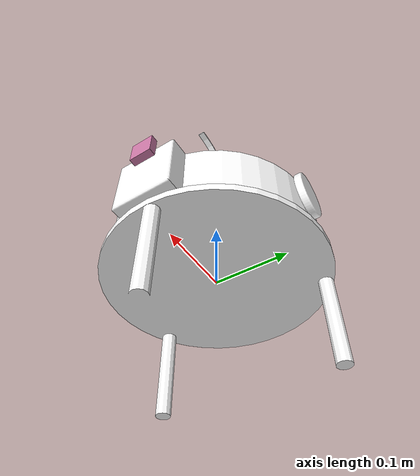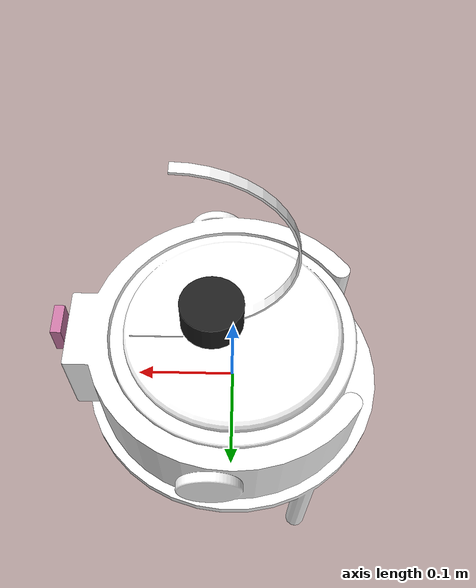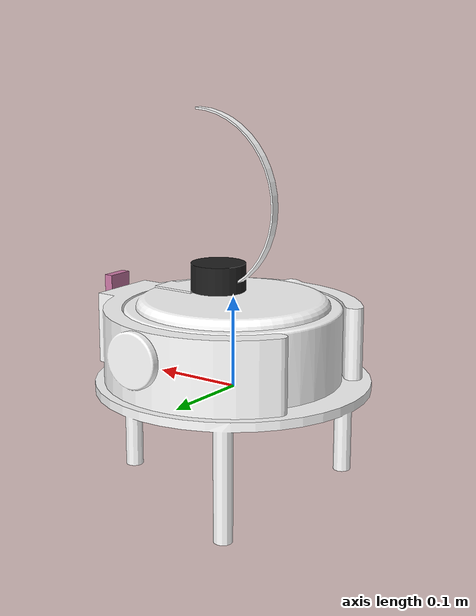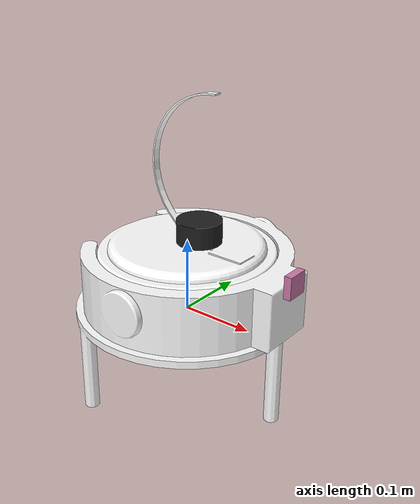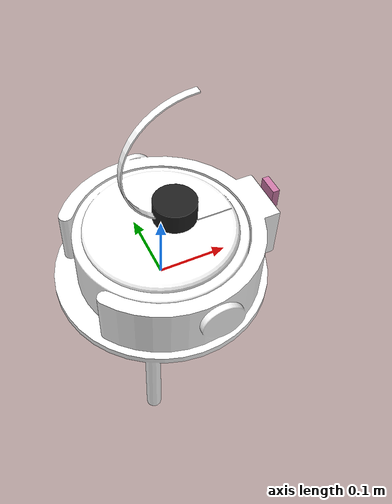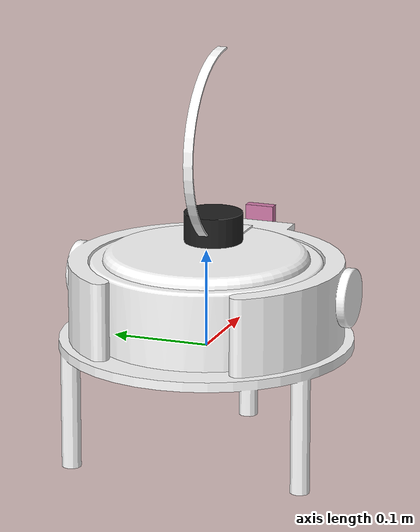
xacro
<?xml version="1.0" encoding="utf-8"?>

<robot
  name="kilobots2_urdf">
  <link
    name="base_link">
    <inertial>
      <origin
        xyz="-1.33781874467331E-14 -3.82853471148081E-15 -0.00396551724138915"
        rpy="0 0 0" />
      <mass
        value="0.81995568258708" />
      <inertia
        ixx="0.00564079460799193"
        ixy="-1.84653182501403E-16"
        ixz="-5.58393216252565E-16"
        iyy="0.00564079460799049"
        iyz="-1.60376033938652E-16"
        izz="0.0101745190475514" />
    </inertial>
    <visual>
      <origin
        xyz="0 0 0"
        rpy="0 0 0" />
      <geometry>
        <mesh
          filename="package://kilobots2_urdf/meshes/base_link.STL" />
      </geometry>
      <material
        name="">
        <color
          rgba="1 1 1 1" />
      </material>
    </visual>
  </link>
  <link
    name="Link1">
    <inertial>
      <origin
        xyz="2.41890735167699E-08 -0.0389268039298344 0.0404375467129113"
        rpy="0 0 0" />
      <mass
        value="0.0127783290000748" />
      <inertia
        ixx="0.0094809701689496"
        ixy="2.48280630189613E-09"
        ixz="-2.71701235830011E-11"
        iyy="0.011500728773523"
        iyz="7.52883944353464E-11"
        izz="0.0196540328337338" />
    </inertial>
    <visual>
      <origin
        xyz="0 0 0"
        rpy="0 0 0" />
      <geometry>
        <mesh
          filename="package://kilobots2_urdf/meshes/Link1.STL" />
      </geometry>
      <material
        name="">
        <color
          rgba="1 1 1 1" />
      </material>
    </visual>
    <collision>
      <origin
        xyz="0 0 0"
        rpy="0 0 0" />
      <geometry>
        <mesh
          filename="package://kilobots2_urdf/meshes/Link1.STL" />
      </geometry>
    </collision>
  </link>
  <joint
    name="Joint1"
    type="fixed">
    <origin
      xyz="0 0 0.01"
      rpy="0 0 1.5707963267949" />
    <parent
      link="base_link" />
    <child
      link="Link1" />
    <axis
      xyz="0 0 0" />
  </joint>
  <link
    name="Link2">
    <inertial>
      <origin
        xyz="-1.73472347597681E-18 -2.91579343624226E-05 0.0441550968095283"
        rpy="0 0 0" />
      <mass
        value="0.0383978314428565" />
      <inertia
        ixx="0.0156048213930555"
        ixy="5.81973948055211E-21"
        ixz="6.18076262284864E-21"
        iyy="0.01558301455067"
        iyz="-1.76377147802608E-05"
        izz="0.02612898447122" />
    </inertial>
    <visual>
      <origin
        xyz="0 0 0"
        rpy="0 0 0" />
      <geometry>
        <mesh
          filename="package://kilobots2_urdf/meshes/Link2.STL" />
      </geometry>
      <material
        name="">
        <color
          rgba="1 1 1 1" />
      </material>
    </visual>
    <collision>
      <origin
        xyz="0 0 0"
        rpy="0 0 0" />
      <geometry>
        <mesh
          filename="package://kilobots2_urdf/meshes/Link2.STL" />
      </geometry>
    </collision>
  </link>
  <joint
    name="Joint2"
    type="fixed">
    <origin
      xyz="0 0 0.01"
      rpy="0 0 1.5707963267949" />
    <parent
      link="base_link" />
    <child
      link="Link2" />
    <axis
      xyz="0 0 0" />
  </joint>
  <link
    name="Link3">
    <inertial>
      <origin
        xyz="-3.46944695195361E-18 5.55111512312578E-17 0.0209368228081408"
        rpy="0 0 0" />
      <mass
        value="0.0459623889803847" />
      <inertia
        ixx="0.000567804576580147"
        ixy="-9.53360892800729E-20"
        ixz="3.32840690823332E-19"
        iyy="0.00287373377271726"
        iyz="1.02152491374102E-19"
        izz="0.00248016039062731" />
    </inertial>
    <collision>
      <origin
        xyz="0 0 0"
        rpy="0 0 0" />
      <geometry>
        <mesh
          filename="package://kilobots2_urdf/meshes/Link3.STL" />
      </geometry>
    </collision>
  </link>
  <joint
    name="Joint3"
    type="fixed">
    <origin
      xyz="0.015 0 -0.02"
      rpy="-3.1416 0 1.5708" />
    <parent
      link="base_link" />
    <child
      link="Link3" />
    <axis
      xyz="0 0 0" />
  </joint>
  <link
    name="Link4">
    <inertial>
      <origin
        xyz="0 4.16333634234434E-17 -0.045"
        rpy="0 0 0" />
      <mass
        value="0.0339787797791946" />
      <inertia
        ixx="0.000194953665268063"
        ixy="4.35970711724902E-21"
        ixz="3.87253942747808E-21"
        iyy="0.000194953665268063"
        iyz="1.26815630932506E-20"
        izz="0.000343105616742529" />
    </inertial>
    <collision>
      <origin
        xyz="0 0 0"
        rpy="0 0 0" />
      <geometry>
        <mesh
          filename="package://kilobots2_urdf/meshes/Link4.STL" />
      </geometry>
    </collision>
  </link>
  <joint
    name="Joint4"
    type="continuous">
    <origin
      xyz="-0.045 0 0.055"
      rpy="1.5707963267949 0 -1.5707963267949" />
    <parent
      link="Link3" />
    <child
      link="Link4" />
    <axis
      xyz="0 0 -1" />
    <limit
      lower="-3"
      upper="3"
      effort="3"
      velocity="3" />
  </joint>

<link name="laser_link">
        <inertial>
            <mass value="0.1" />
            <origin xyz="0 0 0" />
            <inertia ixx="0.01" ixy="0.0" ixz="0.0"
                        iyy="0.01" iyz="0.0"
                        izz="0.01" />
        </inertial>

        <visual>
            <origin xyz=" 0 0 0 " rpy="0 0 0" />
            <geometry>
                <cylinder length="0.03" radius="0.03"/>
            </geometry>
            <material name="black"/>
        </visual>

        <collision>
            <origin xyz="0.0 0.0 0.0" rpy="0 0 0" />
            <geometry>
                <cylinder length="0.03" radius="0.03"/>
            </geometry>
        </collision>
    </link>

	<joint name="rplidar_joint" type="fixed">
		<origin xyz="0.02 0 0.12" rpy="0 0 0" />
		<parent link="base_link"/>
		<child link="laser_link"/>
	</joint>

    <gazebo reference="laser_link">
        <material>Gazebo/Grey</material>
    </gazebo>

    <gazebo reference="laser_link">
        <sensor type="ray" name="rplidar">
            <pose>0 0 0 0 0 0</pose>
            <visualize>false</visualize>
            <update_rate>30</update_rate>
            <ray>
                <scan>
                    <horizontal>
                    <samples>360</samples>
                    <resolution>1</resolution>
                    <min_angle>-3.14</min_angle>
                    <max_angle>3.14</max_angle>
                    </horizontal>
                </scan>
                <range>
                    <min>0.20</min>
                    <max>30.0</max>
                    <resolution>0.01</resolution>
                </range>
                <noise>
                    <type>gaussian</type>
                    <mean>0.0</mean>
                    <stddev>0.01</stddev>
                </noise>
            </ray>
            <plugin name="gazebo_rplidar" filename="libgazebo_ros_laser.so">
                <topicName>scan</topicName>
                <frameName>laser_link</frameName>
            </plugin>
        </sensor>
    </gazebo>

  <!--camera-->

    <link name="camera_link">
      <origin xyz="0 0 0" rpy="0 0 0"/>
      <visual>
        <geometry>
          <box size="0.01 0.03 0.03"/>
        </geometry>
      </visual>
      <collision>
        <geometry>
          <box size="0.01 0.03 0.03"/>
        </geometry>
      </collision>
    </link>

    <link name="camera_frame_optical"/>
    <joint name="camera_optical_joint" type="fixed">
      <origin xyz="0 0 0" rpy="-1.5708 0 -1.5708"/>
      <parent link="camera_link"/>
      <child link="camera_frame_optical"/>
    </joint>

  <joint name="camera_joint" type="fixed">
    <axis xyz="0 1 0" />
    <origin xyz="0.165 0 0.09" rpy="0 0 0"/>
    <parent link="base_link"/>
    <child link="camera_link"/>
  </joint>

  <gazebo reference="camera_link">
      <sensor type="depth" name="camera">
          <always_on>true</always_on>
          <update_rate>20.0</update_rate>
          <camera>
              <horizontal_fov>1.047</horizontal_fov>
              <image>
                  <format>R8G8B8</format>
                  <width>640</width>
                  <height>480</height>
              </image>
              <clip>
                  <near>0.05</near>
                  <far>20.0</far>
              </clip>
          </camera>
          <plugin name="kinect_camera_controller" filename="libgazebo_ros_openni_kinect.so">
              <cameraName>camera</cameraName>
              <alwaysOn>true</alwaysOn>
              <updateRate>10</updateRate>
              <imageTopicName>rgb/image_raw</imageTopicName>
              <depthImageTopicName>depth/image_raw</depthImageTopicName>
              <pointCloudTopicName>depth/points</pointCloudTopicName>
              <cameraInfoTopicName>rgb/camera_info</cameraInfoTopicName>
              <depthImageCameraInfoTopicName>depth/camera_info</depthImageCameraInfoTopicName>
              <frameName>camera_frame_optical</frameName>
              <baseline>0.1</baseline>
              <distortion_k1>0.0</distortion_k1>
              <distortion_k2>0.0</distortion_k2>
              <distortion_k3>0.0</distortion_k3>
              <distortion_t1>0.0</distortion_t1>
              <distortion_t2>0.0</distortion_t2>
              <pointCloudCutoffMax> 5000 </pointCloudCutoffMax>
              <pointCloudCutoff>0.05</pointCloudCutoff>
          </plugin>
      </sensor>
  </gazebo>

  <gazebo>
    <plugin name="mbot_drive_controller" filename="libgazebo_ros_planar_move.so">
        <commandTopic>cmd_vel</commandTopic>
        <odometryTopic>odom</odometryTopic>
        <odometryFrame>odom</odometryFrame>
        <odometryRate>50</odometryRate>
        <robotBaseFrame>base_link</robotBaseFrame>
    </plugin>
  </gazebo>

    <!--color-->
    <gazebo reference="base_link">
        <material>Gazebo/Grey</material>
    </gazebo>

    <gazebo reference="Link1">
        <material>Gazebo/Green</material>
    </gazebo>

    <gazebo reference="Link2">
        <material>Gazebo/Black</material>
    </gazebo>

    <gazebo reference="Link3">
        <material>Gazebo/Black</material>
    </gazebo>

    <gazebo reference="Link4">
        <material>Gazebo/Black</material>
    </gazebo>

    <gazebo reference="base_link">
        <turnGravityOff>true</turnGravityOff>
    </gazebo>

    <gazebo reference="Link1">
        <turnGravityOff>true</turnGravityOff>
    </gazebo>

    <gazebo reference="Link2">
        <turnGravityOff>true</turnGravityOff>
    </gazebo>

    <gazebo reference="Link3">
        <turnGravityOff>true</turnGravityOff>
    </gazebo>

    <gazebo reference="Link4">
        <turnGravityOff>true</turnGravityOff>
    </gazebo>

    <gazebo reference="laser_link">
        <turnGravityOff>true</turnGravityOff>
    </gazebo>

</robot>
